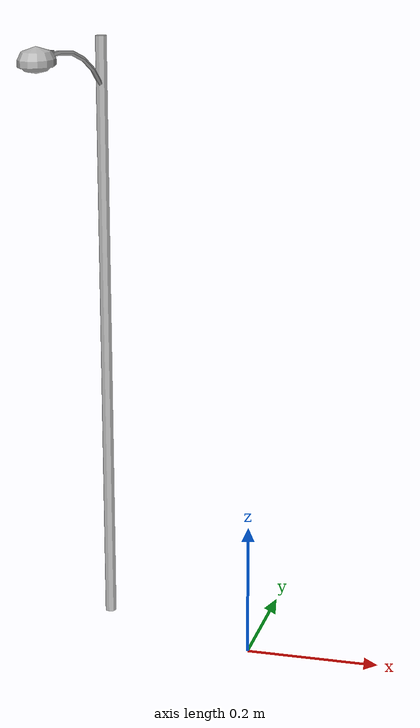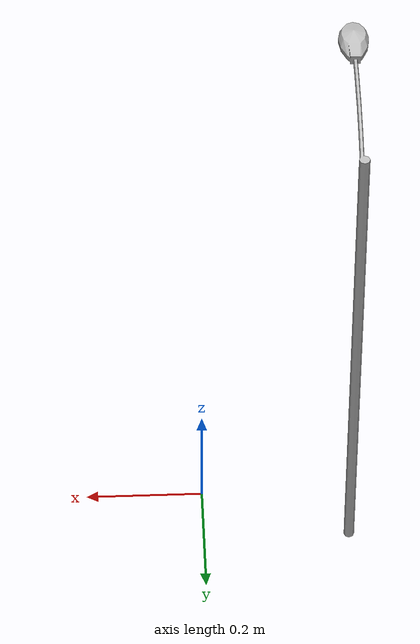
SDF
<?xml version="1.0" ?>
<sdf version="1.5">
  <model name="lamp_post_autonomos">
    <static>true</static>
    <link name="link">
      <collision name="collision">
        <geometry>
          <mesh>
            <uri>model://lamp_post_autonomos/meshes/lamp_post_autonomos.dae</uri>
            <scale>3 3 3</scale>
          </mesh>
        </geometry>
      </collision>
      <visual name="visual">
        <geometry>
          <mesh>
            <uri>model://lamp_post_autonomos/meshes/lamp_post_autonomos.dae</uri>
            <scale>3 3 3</scale>
          </mesh>
        </geometry>
      </visual>
    </link>
  </model>
</sdf>
